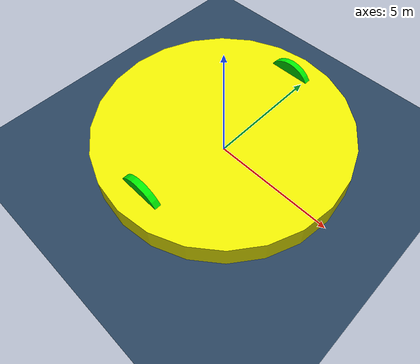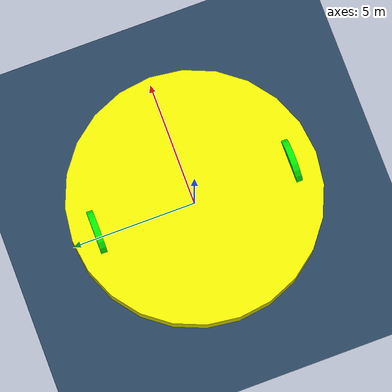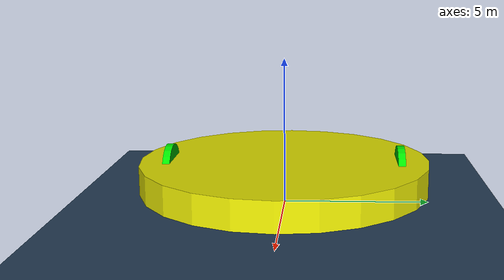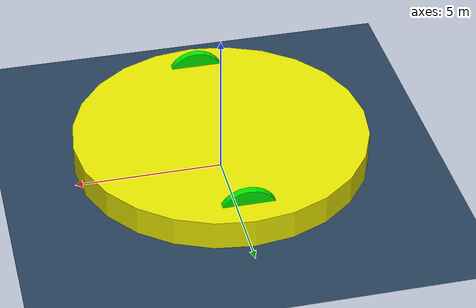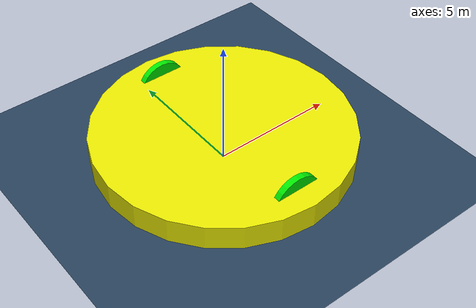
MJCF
<mujoco>
	<option gravity="0 0 -9.81" timestep="0.0005"/>
	<asset>
    	<texture name="grid" type="2d" builtin="checker" width="512" height="512" rgb1=".1 .2 .3" rgb2=".2 .3 .4"/>
    	<material name="grid" texture="grid" texrepeat="1 1" texuniform="true" reflectance=".2"/>
    </asset>
	<worldbody>
        <light diffuse=".5 .5 .5" pos="0 0 3" dir="0 0 -1"/>
		<geom type="plane" size="500 500 0.1" material="grid" solref="0.01 1" solimp="0.9 0.95 0.001 0.5"/>
		<body name = "chassis" pos="0 0 1" euler='0 0 0'>
			<joint type="slide" axis="1 0 0"/>
			<joint type="slide" axis="0 1 0"/>
			<joint type="hinge" axis="1 0 0"/>
			<joint type="hinge" axis="0 0 1"/>
			<geom type="cylinder" size="5 0.5" rgba=".9 .9 0 1" friction="0 0 0" density="100"/>
			<site name="marker" pos = "0 0 0" size="0.1" />
			<body name="left-tire" pos="0 -4 0" euler='90 0 0'>
				<joint name = "left-wheel" type="hinge" axis="0 0 -1" damping="10"/>
				<geom type="cylinder" size="1 0.125" rgba="0 .9 0 1" friction="0 0 0.0001"/>
			</body>
			<body name="right-tire" pos="0 4 0" euler='90 0 0'>
				<joint name = "right-wheel" type="hinge" axis="0 0 1" damping="10"/>
				<geom type="cylinder" size="1 0.125" rgba="0 .9 0 1" friction="0 0 0.0001"/>
			</body>
		</body>
	</worldbody>
	<sensor>
		<framepos objtype="site" objname="marker"/>
	</sensor>
</mujoco>
